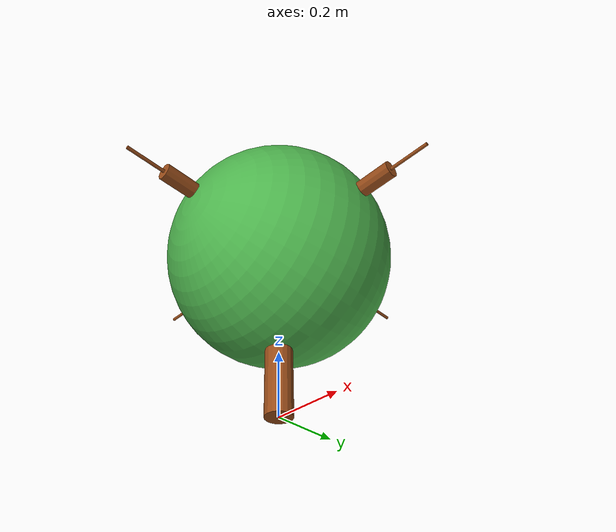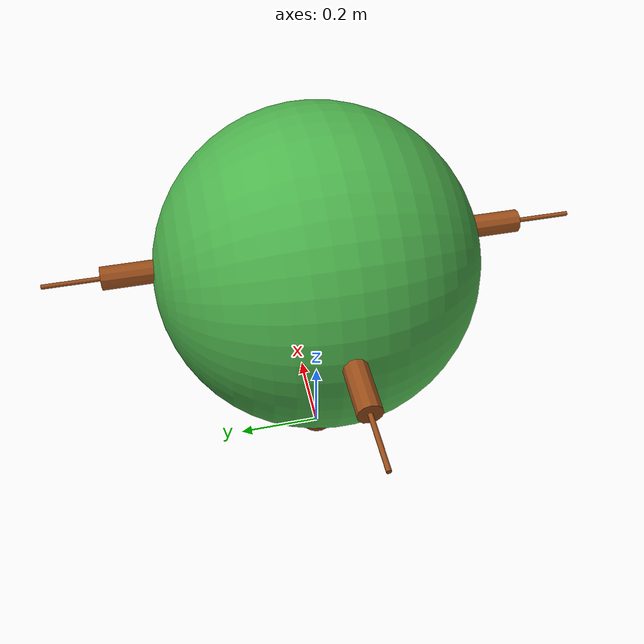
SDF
<sdf version='1.7'>
  <model name='tree_body'>
    <link name='base_link'>
      <inertial>
        <pose>0 -0 0.471764 0 -0 0</pose>
        <mass>1.19801</mass>
        <inertia>
          <ixx>0.0425808</ixx>
          <ixy>1.32721e-16</ixy>
          <ixz>-1.63924e-09</ixz>
          <iyy>0.0425808</iyy>
          <iyz>-1.70022e-09</iyz>
          <izz>0.0498619</izz>
        </inertia>
      </inertial>
      <collision name='base_link_collision'>
        <pose>0 0 0 0 -0 0</pose>
        <geometry>
          <mesh>
            <scale>1 1 1</scale>
            <uri>model://tree_body/meshes/base_link.STL</uri>
          </mesh>
        </geometry>
      </collision>
      <collision name='base_link_fixed_joint_lump__branch1_collision_1'>
        <pose>0 -0.57 0.6 1.5708 -0 0</pose>
        <geometry>
          <mesh>
            <scale>1 1 1</scale>
            <uri>model://tree_body/meshes/branch1.STL</uri>
          </mesh>
        </geometry>
      </collision>
      <collision name='base_link_fixed_joint_lump__branch2_collision_2'>
        <pose>0.57 0 0.6 1.5708 -0 1.5708</pose>
        <geometry>
          <mesh>
            <scale>1 1 1</scale>
            <uri>model://tree_body/meshes/branch2.STL</uri>
          </mesh>
        </geometry>
      </collision>
      <collision name='base_link_fixed_joint_lump__branch3_collision_3'>
        <pose>0 0.57 0.6 1.5708 -0 -3.14159</pose>
        <geometry>
          <mesh>
            <scale>1 1 1</scale>
            <uri>model://tree_body/meshes/branch3.STL</uri>
          </mesh>
        </geometry>
      </collision>
      <collision name='base_link_fixed_joint_lump__branch4_collision_4'>
        <pose>-0.57 0 0.6 1.5708 0 -1.5708</pose>
        <geometry>
          <mesh>
            <scale>1 1 1</scale>
            <uri>model://tree_body/meshes/branch4.STL</uri>
          </mesh>
        </geometry>
      </collision>
      <collision name='base_link_fixed_joint_lump__leaves_collision_5'>
        <pose>0 0 0.55 0 -0 0</pose>
        <geometry>
          <mesh>
            <scale>1 1 1</scale>
            <uri>model://tree_body/meshes/leaves.STL</uri>
          </mesh>
        </geometry>
      </collision>
      <visual name='base_link_visual'>
        <pose>0 0 0 0 -0 0</pose>
        <geometry>
          <mesh>
            <scale>1 1 1</scale>
            <uri>model://tree_body/meshes/base_link.STL</uri>
          </mesh>
        </geometry>
        <material> <!-- Brown tree trunk material -->
          <ambient>0.3 0.1 0.0 1</ambient>  <!-- Dark brown for shadowed areas -->
          <diffuse>0.6 0.3 0.1 1</diffuse>  <!-- Rich brown for visible reflection -->
          <specular>0.1 0.1 0.1 0</specular>  <!-- Very low specular, matte finish -->
          <emissive>0.05 0.02 0.01 1</emissive>  <!-- Very subtle glow, no strong emission -->
        </material> <!-- End tree trunk material -->

      </visual>
      <visual name='base_link_fixed_joint_lump__branch1_visual_1'>
        <pose>0 -0.57 0.6 1.5708 -0 0</pose>
        <geometry>
          <mesh>
            <scale>1 1 1</scale>
            <uri>model://tree_body/meshes/branch1.STL</uri>
          </mesh>
        </geometry>
        <material> <!-- Brown tree trunk material -->
          <ambient>0.3 0.1 0.0 1</ambient>  <!-- Dark brown for shadowed areas -->
          <diffuse>0.6 0.3 0.1 1</diffuse>  <!-- Rich brown for visible reflection -->
          <specular>0.1 0.1 0.1 0</specular>  <!-- Very low specular, matte finish -->
          <emissive>0.05 0.02 0.01 1</emissive>  <!-- Very subtle glow, no strong emission -->
        </material> <!-- End tree trunk material -->
      </visual>
      <visual name='base_link_fixed_joint_lump__branch2_visual_2'>
        <pose>0.57 0 0.6 1.5708 -0 1.5708</pose>
        <geometry>
          <mesh>
            <scale>1 1 1</scale>
            <uri>model://tree_body/meshes/branch2.STL</uri>
          </mesh>
        </geometry>
        <material> <!-- Brown tree trunk material -->
          <ambient>0.3 0.1 0.0 1</ambient>  <!-- Dark brown for shadowed areas -->
          <diffuse>0.6 0.3 0.1 1</diffuse>  <!-- Rich brown for visible reflection -->
          <specular>0.1 0.1 0.1 0</specular>  <!-- Very low specular, matte finish -->
          <emissive>0.05 0.02 0.01 1</emissive>  <!-- Very subtle glow, no strong emission -->
        </material> <!-- End tree trunk material -->
      </visual>
      <visual name='base_link_fixed_joint_lump__branch3_visual_3'>
        <pose>0 0.57 0.6 1.5708 -0 -3.14159</pose>
        <geometry>
          <mesh>
            <scale>1 1 1</scale>
            <uri>model://tree_body/meshes/branch3.STL</uri>
          </mesh>
        </geometry>
        <material> <!-- Brown tree trunk material -->
          <ambient>0.3 0.1 0.0 1</ambient>  <!-- Dark brown for shadowed areas -->
          <diffuse>0.6 0.3 0.1 1</diffuse>  <!-- Rich brown for visible reflection -->
          <specular>0.1 0.1 0.1 0</specular>  <!-- Very low specular, matte finish -->
          <emissive>0.05 0.02 0.01 1</emissive>  <!-- Very subtle glow, no strong emission -->
        </material> <!-- End tree trunk material -->
      </visual>
      <visual name='base_link_fixed_joint_lump__branch4_visual_4'>
        <pose>-0.57 0 0.6 1.5708 0 -1.5708</pose>
        <geometry>
          <mesh>
            <scale>1 1 1</scale>
            <uri>model://tree_body/meshes/branch4.STL</uri>
          </mesh>
        </geometry>
        <material> <!-- Brown tree trunk material -->
          <ambient>0.3 0.1 0.0 1</ambient>  <!-- Dark brown for shadowed areas -->
          <diffuse>0.6 0.3 0.1 1</diffuse>  <!-- Rich brown for visible reflection -->
          <specular>0.1 0.1 0.1 0</specular>  <!-- Very low specular, matte finish -->
          <emissive>0.05 0.02 0.01 1</emissive>  <!-- Very subtle glow, no strong emission -->
        </material> <!-- End tree trunk material -->
      </visual>
      <visual name='base_link_fixed_joint_lump__leaves_visual_5'>
        <pose>0 0 0.55 0 -0 0</pose>
        <geometry>
          <mesh>
            <scale>1 1 1</scale>
            <uri>model://tree_body/meshes/leaves.STL</uri>
          </mesh>
        </geometry>
        <material> <!-- Green leaf material -->
          <ambient>0.1 0.4 0.1 1</ambient>  <!-- Dim green, not too bright -->
          <diffuse>0.3 0.7 0.3 1</diffuse>  <!-- Rich green, but not saturated -->
          <specular>0.2 0.2 0.2 0</specular>  <!-- Slight specular for a matte finish -->
          <emissive>0.05 0.2 0.05 1</emissive>  <!-- Very subtle glow, like light passing through leaves -->
        </material> <!-- End leaf material -->
      </visual>
    </link>
    <frame name='branch1_joint' attached_to='base_link'>
      <pose>0 -0.57 0.6 1.5708 -0 0</pose>
    </frame>
    <frame name='branch1' attached_to='branch1_joint'/>
    <frame name='branch2_joint' attached_to='base_link'>
      <pose>0.57 0 0.6 1.5708 -0 1.5708</pose>
    </frame>
    <frame name='branch2' attached_to='branch2_joint'/>
    <frame name='branch3_joint' attached_to='base_link'>
      <pose>0 0.57 0.6 1.5708 -0 -3.14159</pose>
    </frame>
    <frame name='branch3' attached_to='branch3_joint'/>
    <frame name='branch4_joint' attached_to='base_link'>
      <pose>-0.57 0 0.6 1.5708 0 -1.5708</pose>
    </frame>
    <frame name='branch4' attached_to='branch4_joint'/>
    <frame name='leaves_joint' attached_to='base_link'>
      <pose>0 0 0.55 0 -0 0</pose>
    </frame>
    <frame name='leaves' attached_to='leaves_joint'/>
  </model>
</sdf>
